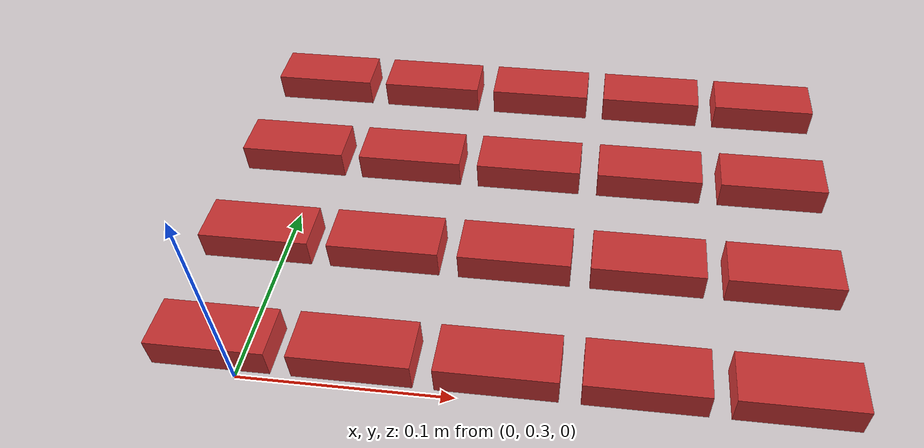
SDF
<sdf version="1.9">
 <world name="irb120_workcell">
  <physics name="default_physics" type="ode">
   <max_step_size>0.001</max_step_size>
   <real_time_factor>1.0</real_time_factor>
   <real_time_update_rate>1000</real_time_update_rate>
  </physics>
  <gravity>0 0 -9.81</gravity>
  <scene><ambient>0.4 0.4 0.4 1</ambient><background>0.7 0.7 0.7 1</background><shadows>true</shadows></scene>
  <light name="sun" type="directional">
   <pose>0 0 10 0 0 0</pose>
   <diffuse>0.8 0.8 0.8 1</diffuse>
   <specular>0.2 0.2 0.2 1</specular>
   <direction>-0.5 0.1 -0.9</direction>
  </light>
  <model name="ground_plane">
   <static>true</static>
   <pose>0 0 -0.871 0 0 0</pose>
   <link name="link">
    <collision name="collision">
     <geometry><plane><normal>0 0 1</normal><size>100 100</size></plane></geometry>
     <surface>
      <contact><collide_bitmask>0x01</collide_bitmask></contact>
      <friction><ode><mu>1.0</mu><mu2>1.0</mu2></ode></friction>
     </surface>
    </collision>
    <visual name="visual">
     <geometry><plane><normal>0 0 1</normal><size>100 100</size></plane></geometry>
     <material><ambient>0.8 0.8 0.8 1</ambient><diffuse>0.8 0.8 0.8 1</diffuse></material>
    </visual>
   </link>
  </model>
  <include><uri>model://brick</uri><name>brick_00</name><pose>0.240 0.300 0.031 0 0 0</pose></include>
  <include><uri>model://brick</uri><name>brick_01</name><pose>0.180 0.300 0.031 0 0 0</pose></include>
  <include><uri>model://brick</uri><name>brick_02</name><pose>0.120 0.300 0.031 0 0 0</pose></include>
  <include><uri>model://brick</uri><name>brick_03</name><pose>0.060 0.300 0.031 0 0 0</pose></include>
  <include><uri>model://brick</uri><name>brick_04</name><pose>0.000 0.300 0.031 0 0 0</pose></include>
  <include><uri>model://brick</uri><name>brick_05</name><pose>0.240 0.360 0.031 0 0 0</pose></include>
  <include><uri>model://brick</uri><name>brick_06</name><pose>0.180 0.360 0.031 0 0 0</pose></include>
  <include><uri>model://brick</uri><name>brick_07</name><pose>0.120 0.360 0.031 0 0 0</pose></include>
  <include><uri>model://brick</uri><name>brick_08</name><pose>0.060 0.360 0.031 0 0 0</pose></include>
  <include><uri>model://brick</uri><name>brick_09</name><pose>0.000 0.360 0.031 0 0 0</pose></include>
  <include><uri>model://brick</uri><name>brick_10</name><pose>0.240 0.420 0.031 0 0 0</pose></include>
  <include><uri>model://brick</uri><name>brick_11</name><pose>0.180 0.420 0.031 0 0 0</pose></include>
  <include><uri>model://brick</uri><name>brick_12</name><pose>0.120 0.420 0.031 0 0 0</pose></include>
  <include><uri>model://brick</uri><name>brick_13</name><pose>0.060 0.420 0.031 0 0 0</pose></include>
  <include><uri>model://brick</uri><name>brick_14</name><pose>0.000 0.420 0.031 0 0 0</pose></include>
  <include><uri>model://brick</uri><name>brick_15</name><pose>0.240 0.480 0.031 0 0 0</pose></include>
  <include><uri>model://brick</uri><name>brick_16</name><pose>0.180 0.480 0.031 0 0 0</pose></include>
  <include><uri>model://brick</uri><name>brick_17</name><pose>0.120 0.480 0.031 0 0 0</pose></include>
  <include><uri>model://brick</uri><name>brick_18</name><pose>0.060 0.480 0.031 0 0 0</pose></include>
  <include><uri>model://brick</uri><name>brick_19</name><pose>0.000 0.480 0.031 0 0 0</pose></include>
 </world>
</sdf>

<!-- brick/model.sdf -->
<sdf version="1.9">
  <model name="brick">
    <static>false</static>

    <link name="brick_link">
      <inertial>
        <mass>0.0077</mass>
        <inertia>
          <ixx>4.65e-7</ixx>
          <iyy>1.80e-6</iyy>
          <izz>2.01e-6</izz>
          <ixy>0.0</ixy>
          <ixz>0.0</ixz>
          <iyz>0.0</iyz>
        </inertia>
      </inertial>

      <collision name="collision">
        <geometry>
          <box>
            <size>0.051 0.023 0.014</size>
          </box>
        </geometry>
        <surface>
          <friction>
            <ode>
              <mu>5.0</mu>
              <mu2>5.0</mu2>
              <slip1>0.0</slip1>
              <slip2>0.0</slip2>
            </ode>
          </friction>
          <contact>
            <ode>
              <kp>1e7</kp>
              <kd>1e4</kd>
              <max_vel>0.01</max_vel>
              <min_depth>0.001</min_depth>
            </ode>
          </contact>
        </surface>
      </collision>

      <visual name="visual">
        <geometry>
          <box>
            <size>0.051 0.023 0.014</size>
          </box>
        </geometry>
        <material>
          <ambient>0.8 0.2 0.2 1</ambient>
          <diffuse>0.8 0.2 0.2 1</diffuse>
        </material>
      </visual>
    </link>
  </model>
</sdf>
